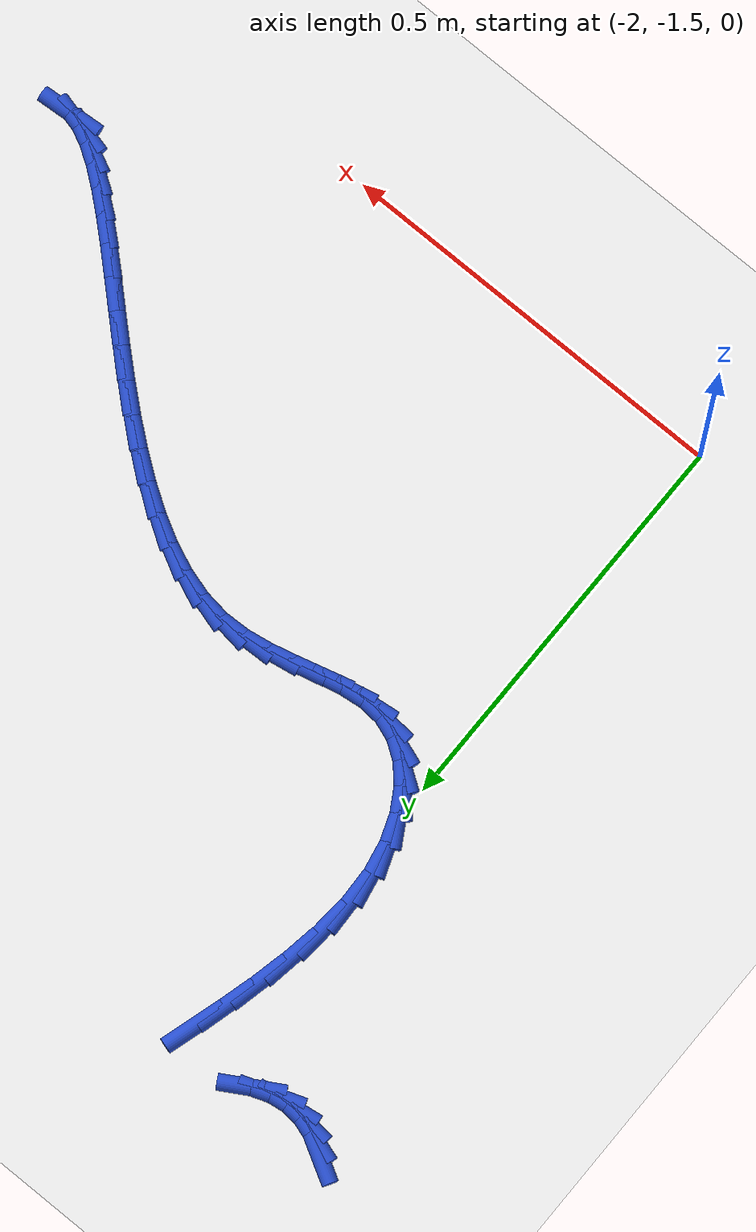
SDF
<sdf version="1.6">
 <world name="default">
  <model name="ground_plane">
   <static>1</static>
   <link name="link">
    <collision name="collision">
     <geometry><plane><normal>0 0 1</normal><size>100 100</size></plane></geometry>
     <surface><friction><ode><mu>100</mu><mu2>50</mu2></ode></friction></surface>
    </collision>
    <visual name="visual">
     <cast_shadows>0</cast_shadows>
     <geometry><plane><normal>0 0 1</normal><size>100 100</size></plane></geometry>
     <material>
      <script><uri>file://media/materials/scripts/gazebo.material</uri><name>Gazebo/WhiteGlow</name></script>
     </material>
    </visual>
   </link>
  </model>
  <model name="line">
   <link name="link_140">
    <pose>-2.1687996086371824 -0.6071736518790721 0.01 0 1.57 -0.516625931598604</pose>
    <collision name="collision">
     <geometry><cylinder><radius>0.01</radius><length>0.08</length></cylinder></geometry>
    </collision>
    <visual name="visual">
     <material>
      <script><name>Gazebo/Blue</name><uri>file://media/materials/scripts/gazebo.material</uri></script>
     </material>
     <geometry><cylinder><radius>0.01</radius><length>0.08</length></cylinder></geometry>
    </visual>
   </link>
   <link name="link_141">
    <pose>-2.1500158740721727 -0.6178445087653444 0.01 0 1.57 -0.3121784217321216</pose>
    <collision name="collision">
     <geometry><cylinder><radius>0.01</radius><length>0.08</length></cylinder></geometry>
    </collision>
    <visual name="visual">
     <material>
      <script><name>Gazebo/Blue</name><uri>file://media/materials/scripts/gazebo.material</uri></script>
     </material>
     <geometry><cylinder><radius>0.01</radius><length>0.08</length></cylinder></geometry>
    </visual>
   </link>
   <link name="link_142">
    <pose>-2.130309226336709 -0.6242044575581984 0.01 0 1.57 -0.08810672554728137</pose>
    <collision name="collision">
     <geometry><cylinder><radius>0.01</radius><length>0.08</length></cylinder></geometry>
    </collision>
    <visual name="visual">
     <material>
      <script><name>Gazebo/Blue</name><uri>file://media/materials/scripts/gazebo.material</uri></script>
     </material>
     <geometry><cylinder><radius>0.01</radius><length>0.08</length></cylinder></geometry>
    </visual>
   </link>
   <link name="link_143">
    <pose>-2.1097114000828388 -0.6260239752020731 0.01 0 1.57 0.13664599463952837</pose>
    <collision name="collision">
     <geometry><cylinder><radius>0.01</radius><length>0.08</length></cylinder></geometry>
    </collision>
    <visual name="visual">
     <material>
      <script><name>Gazebo/Blue</name><uri>file://media/materials/scripts/gazebo.material</uri></script>
     </material>
     <geometry><cylinder><radius>0.01</radius><length>0.08</length></cylinder></geometry>
    </visual>
   </link>
   <link name="link_144">
    <pose>-2.0882541299626096 -0.6230735386414072 0.01 0 1.57 0.3426654272156055</pose>
    <collision name="collision">
     <geometry><cylinder><radius>0.01</radius><length>0.08</length></cylinder></geometry>
    </collision>
    <visual name="visual">
     <material>
      <script><name>Gazebo/Blue</name><uri>file://media/materials/scripts/gazebo.material</uri></script>
     </material>
     <geometry><cylinder><radius>0.01</radius><length>0.08</length></cylinder></geometry>
    </visual>
   </link>
   <link name="link_145">
    <pose>-2.06596915062807 -0.6151236248206401 0.01 0 1.57 0.5188128313841732</pose>
    <collision name="collision">
     <geometry><cylinder><radius>0.01</radius><length>0.08</length></cylinder></geometry>
    </collision>
    <visual name="visual">
     <material>
      <script><name>Gazebo/Blue</name><uri>file://media/materials/scripts/gazebo.material</uri></script>
     </material>
     <geometry><cylinder><radius>0.01</radius><length>0.08</length></cylinder></geometry>
    </visual>
   </link>
   <link name="link_156">
    <pose>-1.9718766123796134 -0.6273092843128836 0.01 0 1.57 1.280080341458596</pose>
    <collision name="collision">
     <geometry><cylinder><radius>0.01</radius><length>0.08</length></cylinder></geometry>
    </collision>
    <visual name="visual">
     <material>
      <script><name>Gazebo/Blue</name><uri>file://media/materials/scripts/gazebo.material</uri></script>
     </material>
     <geometry><cylinder><radius>0.01</radius><length>0.08</length></cylinder></geometry>
    </visual>
   </link>
   <link name="link_157">
    <pose>-1.9841620596648684 -0.6683712734453383 0.01 0 1.57 1.307037559992575</pose>
    <collision name="collision">
     <geometry><cylinder><radius>0.01</radius><length>0.08</length></cylinder></geometry>
    </collision>
    <visual name="visual">
     <material>
      <script><name>Gazebo/Blue</name><uri>file://media/materials/scripts/gazebo.material</uri></script>
     </material>
     <geometry><cylinder><radius>0.01</radius><length>0.08</length></cylinder></geometry>
    </visual>
   </link>
   <link name="link_158">
    <pose>-1.996024714037448 -0.7122988379964714 0.01 0 1.57 1.3484981288494797</pose>
    <collision name="collision">
     <geometry><cylinder><radius>0.01</radius><length>0.08</length></cylinder></geometry>
    </collision>
    <visual name="visual">
     <material>
      <script><name>Gazebo/Blue</name><uri>file://media/materials/scripts/gazebo.material</uri></script>
     </material>
     <geometry><cylinder><radius>0.01</radius><length>0.08</length></cylinder></geometry>
    </visual>
   </link>
   <link name="link_159">
    <pose>-2.0062873314993612 -0.7577018619460397 0.01 0 1.57 1.4077029819613227</pose>
    <collision name="collision">
     <geometry><cylinder><radius>0.01</radius><length>0.08</length></cylinder></geometry>
    </collision>
    <visual name="visual">
     <material>
      <script><name>Gazebo/Blue</name><uri>file://media/materials/scripts/gazebo.material</uri></script>
     </material>
     <geometry><cylinder><radius>0.01</radius><length>0.08</length></cylinder></geometry>
    </visual>
   </link>
   <link name="link_160">
    <pose>-2.013772668052615 -0.8031902292737992 0.01 0 1.57 1.4910535070757183</pose>
    <collision name="collision">
     <geometry><cylinder><radius>0.01</radius><length>0.08</length></cylinder></geometry>
    </collision>
    <visual name="visual">
     <material>
      <script><name>Gazebo/Blue</name><uri>file://media/materials/scripts/gazebo.material</uri></script>
     </material>
     <geometry><cylinder><radius>0.01</radius><length>0.08</length></cylinder></geometry>
    </visual>
   </link>
   <link name="link_161">
    <pose>-2.0173034796992177 -0.8473738239595072 0.01 0 1.57 -1.5325029848141343</pose>
    <collision name="collision">
     <geometry><cylinder><radius>0.01</radius><length>0.08</length></cylinder></geometry>
    </collision>
    <visual name="visual">
     <material>
      <script><name>Gazebo/Blue</name><uri>file://media/materials/scripts/gazebo.material</uri></script>
     </material>
     <geometry><cylinder><radius>0.01</radius><length>0.08</length></cylinder></geometry>
    </visual>
   </link>
   <link name="link_162">
    <pose>-2.015713787019385 -0.8888670833739917 0.01 0 1.57 -1.3823371213604438</pose>
    <collision name="collision">
     <geometry><cylinder><radius>0.01</radius><length>0.08</length></cylinder></geometry>
    </collision>
    <visual name="visual">
     <material>
      <script><name>Gazebo/Blue</name><uri>file://media/materials/scripts/gazebo.material</uri></script>
     </material>
     <geometry><cylinder><radius>0.01</radius><length>0.08</length></cylinder></geometry>
    </visual>
   </link>
   <link name="link_163">
    <pose>-2.0085244982327817 -0.926562100028542 0.01 0 1.57 -1.2189379703199963</pose>
    <collision name="collision">
     <geometry><cylinder><radius>0.01</radius><length>0.08</length></cylinder></geometry>
    </collision>
    <visual name="visual">
     <material>
      <script><name>Gazebo/Blue</name><uri>file://media/materials/scripts/gazebo.material</uri></script>
     </material>
     <geometry><cylinder><radius>0.01</radius><length>0.08</length></cylinder></geometry>
    </visual>
   </link>
   <link name="link_164">
    <pose>-1.9963275785943584 -0.9597839113216412 0.01 0 1.57 -1.0395029412817303</pose>
    <collision name="collision">
     <geometry><cylinder><radius>0.01</radius><length>0.08</length></cylinder></geometry>
    </collision>
    <visual name="visual">
     <material>
      <script><name>Gazebo/Blue</name><uri>file://media/materials/scripts/gazebo.material</uri></script>
     </material>
     <geometry><cylinder><radius>0.01</radius><length>0.08</length></cylinder></geometry>
    </visual>
   </link>
   <link name="link_165">
    <pose>-1.9798078771700223 -0.9878951003376996 0.01 0 1.57 -0.8372208427916176</pose>
    <collision name="collision">
     <geometry><cylinder><radius>0.01</radius><length>0.08</length></cylinder></geometry>
    </collision>
    <visual name="visual">
     <material>
      <script><name>Gazebo/Blue</name><uri>file://media/materials/scripts/gazebo.material</uri></script>
     </material>
     <geometry><cylinder><radius>0.01</radius><length>0.08</length></cylinder></geometry>
    </visual>
   </link>
   <link name="link_166">
    <pose>-1.9596502430256841 -1.0102582501611257 0.01 0 1.57 -0.604899870773394</pose>
    <collision name="collision">
     <geometry><cylinder><radius>0.01</radius><length>0.08</length></cylinder></geometry>
    </collision>
    <visual name="visual">
     <material>
      <script><name>Gazebo/Blue</name><uri>file://media/materials/scripts/gazebo.material</uri></script>
     </material>
     <geometry><cylinder><radius>0.01</radius><length>0.08</length></cylinder></geometry>
    </visual>
   </link>
   <link name="link_167">
    <pose>-1.9365395252272504 -1.02623594387633 0.01 0 1.57 -0.33928057235910414</pose>
    <collision name="collision">
     <geometry><cylinder><radius>0.01</radius><length>0.08</length></cylinder></geometry>
    </collision>
    <visual name="visual">
     <material>
      <script><name>Gazebo/Blue</name><uri>file://media/materials/scripts/gazebo.material</uri></script>
     </material>
     <geometry><cylinder><radius>0.01</radius><length>0.08</length></cylinder></geometry>
    </visual>
   </link>
   <link name="link_168">
    <pose>-1.9111601495021273 -1.0351930269130352 0.01 0 1.57 -0.07305289530908815</pose>
    <collision name="collision">
     <geometry><cylinder><radius>0.01</radius><length>0.08</length></cylinder></geometry>
    </collision>
    <visual name="visual">
     <material>
      <script><name>Gazebo/Blue</name><uri>file://media/materials/scripts/gazebo.material</uri></script>
     </material>
     <geometry><cylinder><radius>0.01</radius><length>0.08</length></cylinder></geometry>
    </visual>
   </link>
   <link name="link_169">
    <pose>-1.8840690554485677 -1.03717563790974 0.01 0 1.57 0.11548946188352999</pose>
    <collision name="collision">
     <geometry><cylinder><radius>0.01</radius><length>0.08</length></cylinder></geometry>
    </collision>
    <visual name="visual">
     <material>
      <script><name>Gazebo/Blue</name><uri>file://media/materials/scripts/gazebo.material</uri></script>
     </material>
     <geometry><cylinder><radius>0.01</radius><length>0.08</length></cylinder></geometry>
    </visual>
   </link>
   <link name="link_170">
    <pose>-1.8555175010640717 -1.0338634955659736 0.01 0 1.57 0.22071208903624057</pose>
    <collision name="collision">
     <geometry><cylinder><radius>0.01</radius><length>0.08</length></cylinder></geometry>
    </collision>
    <visual name="visual">
     <material>
      <script><name>Gazebo/Blue</name><uri>file://media/materials/scripts/gazebo.material</uri></script>
     </material>
     <geometry><cylinder><radius>0.01</radius><length>0.08</length></cylinder></geometry>
    </visual>
   </link>
   <link name="link_171">
    <pose>-1.8257118774039662 -1.0271760901015314 0.01 0 1.57 0.2580476880677839</pose>
    <collision name="collision">
     <geometry><cylinder><radius>0.01</radius><length>0.08</length></cylinder></geometry>
    </collision>
    <visual name="visual">
     <material>
      <script><name>Gazebo/Blue</name><uri>file://media/materials/scripts/gazebo.material</uri></script>
     </material>
     <geometry><cylinder><radius>0.01</radius><length>0.08</length></cylinder></geometry>
    </visual>
   </link>
   <link name="link_172">
    <pose>-1.7948585755235797 -1.019032911736209 0.01 0 1.57 0.23771446905222182</pose>
    <collision name="collision">
     <geometry><cylinder><radius>0.01</radius><length>0.08</length></cylinder></geometry>
    </collision>
    <visual name="visual">
     <material>
      <script><name>Gazebo/Blue</name><uri>file://media/materials/scripts/gazebo.material</uri></script>
     </material>
     <geometry><cylinder><radius>0.01</radius><length>0.08</length></cylinder></geometry>
    </visual>
   </link>
   <link name="link_173">
    <pose>-1.7631639864782416 -1.011353450689803 0.01 0 1.57 0.1623787976932355</pose>
    <collision name="collision">
     <geometry><cylinder><radius>0.01</radius><length>0.08</length></cylinder></geometry>
    </collision>
    <visual name="visual">
     <material>
      <script><name>Gazebo/Blue</name><uri>file://media/materials/scripts/gazebo.material</uri></script>
     </material>
     <geometry><cylinder><radius>0.01</radius><length>0.08</length></cylinder></geometry>
    </visual>
   </link>
   <link name="link_174">
    <pose>-1.7308345013232787 -1.006057197182108 0.01 0 1.57 0.03038862152730418</pose>
    <collision name="collision">
     <geometry><cylinder><radius>0.01</radius><length>0.08</length></cylinder></geometry>
    </collision>
    <visual name="visual">
     <material>
      <script><name>Gazebo/Blue</name><uri>file://media/materials/scripts/gazebo.material</uri></script>
     </material>
     <geometry><cylinder><radius>0.01</radius><length>0.08</length></cylinder></geometry>
    </visual>
   </link>
   <link name="link_175">
    <pose>-1.6980764392632384 -1.0050614182899051 0.01 0 1.57 -0.13675084095205675</pose>
    <collision name="collision">
     <geometry><cylinder><radius>0.01</radius><length>0.08</length></cylinder></geometry>
    </collision>
    <visual name="visual">
     <material>
      <script><name>Gazebo/Blue</name><uri>file://media/materials/scripts/gazebo.material</uri></script>
     </material>
     <geometry><cylinder><radius>0.01</radius><length>0.08</length></cylinder></geometry>
    </visual>
   </link>
   <link name="link_176">
    <pose>-1.6650741253424837 -1.0096028573319797 0.01 0 1.57 -0.2843504570740779</pose>
    <collision name="collision">
     <geometry><cylinder><radius>0.01</radius><length>0.08</length></cylinder></geometry>
    </collision>
    <visual name="visual">
     <material>
      <script><name>Gazebo/Blue</name><uri>file://media/materials/scripts/gazebo.material</uri></script>
     </material>
     <geometry><cylinder><radius>0.01</radius><length>0.08</length></cylinder></geometry>
    </visual>
   </link>
   <link name="link_177">
    <pose>-1.6319589833654098 -1.019281434473842 0.01 0 1.57 -0.4045594631847669</pose>
    <collision name="collision">
     <geometry><cylinder><radius>0.01</radius><length>0.08</length></cylinder></geometry>
    </collision>
    <visual name="visual">
     <material>
      <script><name>Gazebo/Blue</name><uri>file://media/materials/scripts/gazebo.material</uri></script>
     </material>
     <geometry><cylinder><radius>0.01</radius><length>0.08</length></cylinder></geometry>
    </visual>
   </link>
   <link name="link_178">
    <pose>-1.5988546454909853 -1.0334559877127147 0.01 0 1.57 -0.5004163532256258</pose>
    <collision name="collision">
     <geometry><cylinder><radius>0.01</radius><length>0.08</length></cylinder></geometry>
    </collision>
    <visual name="visual">
     <material>
      <script><name>Gazebo/Blue</name><uri>file://media/materials/scripts/gazebo.material</uri></script>
     </material>
     <geometry><cylinder><radius>0.01</radius><length>0.08</length></cylinder></geometry>
    </visual>
   </link>
   <link name="link_179">
    <pose>-1.5658847438781798 -1.05148535504582 0.01 0 1.57 -0.575952343644635</pose>
    <collision name="collision">
     <geometry><cylinder><radius>0.01</radius><length>0.08</length></cylinder></geometry>
    </collision>
    <visual name="visual">
     <material>
      <script><name>Gazebo/Blue</name><uri>file://media/materials/scripts/gazebo.material</uri></script>
     </material>
     <geometry><cylinder><radius>0.01</radius><length>0.08</length></cylinder></geometry>
    </visual>
   </link>
   <link name="link_180">
    <pose>-1.5331729106859604 -1.0727283744703804 0.01 0 1.57 -0.6348925397444964</pose>
    <collision name="collision">
     <geometry><cylinder><radius>0.01</radius><length>0.08</length></cylinder></geometry>
    </collision>
    <visual name="visual">
     <material>
      <script><name>Gazebo/Blue</name><uri>file://media/materials/scripts/gazebo.material</uri></script>
     </material>
     <geometry><cylinder><radius>0.01</radius><length>0.08</length></cylinder></geometry>
    </visual>
   </link>
   <link name="link_181">
    <pose>-1.500842778073296 -1.0965438839836195 0.01 0 1.57 -0.6802156161125644</pose>
    <collision name="collision">
     <geometry><cylinder><radius>0.01</radius><length>0.08</length></cylinder></geometry>
    </collision>
    <visual name="visual">
     <material>
      <script><name>Gazebo/Blue</name><uri>file://media/materials/scripts/gazebo.material</uri></script>
     </material>
     <geometry><cylinder><radius>0.01</radius><length>0.08</length></cylinder></geometry>
    </visual>
   </link>
   <link name="link_182">
    <pose>-1.4690179781991564 -1.1222907215827573 0.01 0 1.57 -0.7141019267412366</pose>
    <collision name="collision">
     <geometry><cylinder><radius>0.01</radius><length>0.08</length></cylinder></geometry>
    </collision>
    <visual name="visual">
     <material>
      <script><name>Gazebo/Blue</name><uri>file://media/materials/scripts/gazebo.material</uri></script>
     </material>
     <geometry><cylinder><radius>0.01</radius><length>0.08</length></cylinder></geometry>
    </visual>
   </link>
   <link name="link_183">
    <pose>-1.4378221432225096 -1.149327725265018 0.01 0 1.57 -0.738000934815157</pose>
    <collision name="collision">
     <geometry><cylinder><radius>0.01</radius><length>0.08</length></cylinder></geometry>
    </collision>
    <visual name="visual">
     <material>
      <script><name>Gazebo/Blue</name><uri>file://media/materials/scripts/gazebo.material</uri></script>
     </material>
     <geometry><cylinder><radius>0.01</radius><length>0.08</length></cylinder></geometry>
    </visual>
   </link>
   <link name="link_184">
    <pose>-1.407378905302324 -1.1770137330276234 0.01 0 1.57 -0.7526970972414654</pose>
    <collision name="collision">
     <geometry><cylinder><radius>0.01</radius><length>0.08</length></cylinder></geometry>
    </collision>
    <visual name="visual">
     <material>
      <script><name>Gazebo/Blue</name><uri>file://media/materials/scripts/gazebo.material</uri></script>
     </material>
     <geometry><cylinder><radius>0.01</radius><length>0.08</length></cylinder></geometry>
    </visual>
   </link>
   <link name="link_185">
    <pose>-1.3778118965975685 -1.2047075828677964 0.01 0 1.57 -0.758320829528354</pose>
    <collision name="collision">
     <geometry><cylinder><radius>0.01</radius><length>0.08</length></cylinder></geometry>
    </collision>
    <visual name="visual">
     <material>
      <script><name>Gazebo/Blue</name><uri>file://media/materials/scripts/gazebo.material</uri></script>
     </material>
     <geometry><cylinder><radius>0.01</radius><length>0.08</length></cylinder></geometry>
    </visual>
   </link>
   <link name="link_186">
    <pose>-1.349244749267212 -1.231768112782759 0.01 0 1.57 -0.7542676056162617</pose>
    <collision name="collision">
     <geometry><cylinder><radius>0.01</radius><length>0.08</length></cylinder></geometry>
    </collision>
    <visual name="visual">
     <material>
      <script><name>Gazebo/Blue</name><uri>file://media/materials/scripts/gazebo.material</uri></script>
     </material>
     <geometry><cylinder><radius>0.01</radius><length>0.08</length></cylinder></geometry>
    </visual>
   </link>
   <link name="link_187">
    <pose>-1.3218010954702224 -1.2575541607697343 0.01 0 1.57 -0.7389712620277542</pose>
    <collision name="collision">
     <geometry><cylinder><radius>0.01</radius><length>0.08</length></cylinder></geometry>
    </collision>
    <visual name="visual">
     <material>
      <script><name>Gazebo/Blue</name><uri>file://media/materials/scripts/gazebo.material</uri></script>
     </material>
     <geometry><cylinder><radius>0.01</radius><length>0.08</length></cylinder></geometry>
    </visual>
   </link>
   <link name="link_188">
    <pose>-1.2956045673655678 -1.2814245648259446 0.01 0 1.57 -0.709423738507653</pose>
    <collision name="collision">
     <geometry><cylinder><radius>0.01</radius><length>0.08</length></cylinder></geometry>
    </collision>
    <visual name="visual">
     <material>
      <script><name>Gazebo/Blue</name><uri>file://media/materials/scripts/gazebo.material</uri></script>
     </material>
     <geometry><cylinder><radius>0.01</radius><length>0.08</length></cylinder></geometry>
    </visual>
   </link>
   <link name="link_189">
    <pose>-1.2707787971122186 -1.3027381629486112 0.01 0 1.57 -0.6602147937748618</pose>
    <collision name="collision">
     <geometry><cylinder><radius>0.01</radius><length>0.08</length></cylinder></geometry>
    </collision>
    <visual name="visual">
     <material>
      <script><name>Gazebo/Blue</name><uri>file://media/materials/scripts/gazebo.material</uri></script>
     </material>
     <geometry><cylinder><radius>0.01</radius><length>0.08</length></cylinder></geometry>
    </visual>
   </link>
   <link name="link_190">
    <pose>-1.247447416869142 -1.3208537931349573 0.01 0 1.57 -0.581628521795643</pose>
    <collision name="collision">
     <geometry><cylinder><radius>0.01</radius><length>0.08</length></cylinder></geometry>
    </collision>
    <visual name="visual">
     <material>
      <script><name>Gazebo/Blue</name><uri>file://media/materials/scripts/gazebo.material</uri></script>
     </material>
     <geometry><cylinder><radius>0.01</radius><length>0.08</length></cylinder></geometry>
    </visual>
   </link>
   <link name="link_191">
    <pose>-1.2257340587953076 -1.335130293382206 0.01 0 1.57 -0.45602230314503756</pose>
    <collision name="collision">
     <geometry><cylinder><radius>0.01</radius><length>0.08</length></cylinder></geometry>
    </collision>
    <visual name="visual">
     <material>
      <script><name>Gazebo/Blue</name><uri>file://media/materials/scripts/gazebo.material</uri></script>
     </material>
     <geometry><cylinder><radius>0.01</radius><length>0.08</length></cylinder></geometry>
    </visual>
   </link>
   <link name="link_192">
    <pose>-1.2057623550496832 -1.3449265016875784 0.01 0 1.57 -0.25266459388190177</pose>
    <collision name="collision">
     <geometry><cylinder><radius>0.01</radius><length>0.08</length></cylinder></geometry>
    </collision>
    <visual name="visual">
     <material>
      <script><name>Gazebo/Blue</name><uri>file://media/materials/scripts/gazebo.material</uri></script>
     </material>
     <geometry><cylinder><radius>0.01</radius><length>0.08</length></cylinder></geometry>
    </visual>
   </link>
   <link name="link_193">
    <pose>-1.187655937791238 -1.3496012560482986 0.01 0 1.57 0.06739346689141634</pose>
    <collision name="collision">
     <geometry><cylinder><radius>0.01</radius><length>0.08</length></cylinder></geometry>
    </collision>
    <visual name="visual">
     <material>
      <script><name>Gazebo/Blue</name><uri>file://media/materials/scripts/gazebo.material</uri></script>
     </material>
     <geometry><cylinder><radius>0.01</radius><length>0.08</length></cylinder></geometry>
    </visual>
   </link>
  </model>
 </world>
</sdf>
